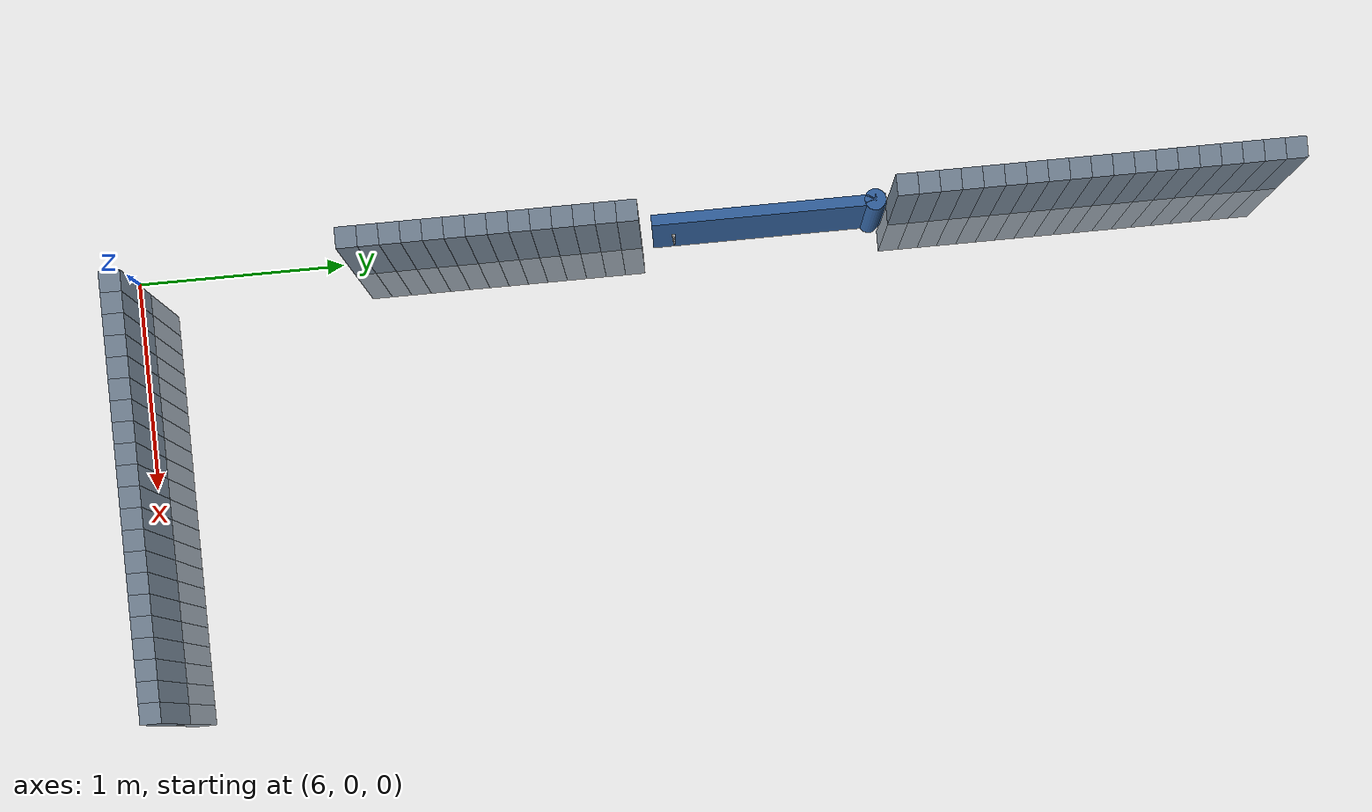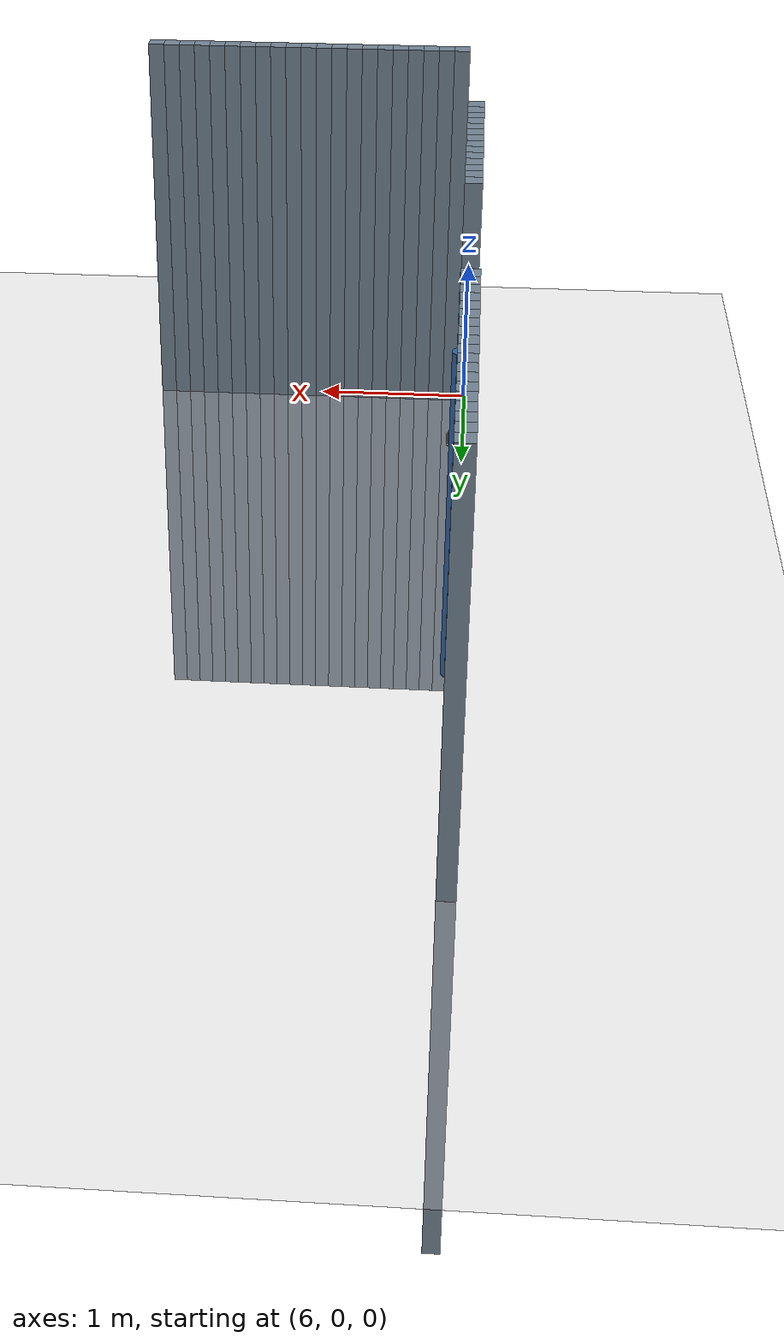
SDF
<sdf version="1.6">
 <world name="default">
  <model name="ground_plane">
   <static>1</static>
   <link name="link">
    <collision name="collision">
     <geometry><plane><normal>0 0 1</normal><size>100 100</size></plane></geometry>
     <surface><friction><ode><mu>100</mu><mu2>50</mu2></ode></friction></surface>
    </collision>
    <visual name="visual">
     <cast_shadows>0</cast_shadows>
     <geometry><plane><normal>0 0 1</normal><size>100 100</size></plane></geometry>
     <material>
      <script><uri>file://media/materials/scripts/gazebo.material</uri><name>Gazebo/Grey</name></script>
     </material>
    </visual>
   </link>
  </model>
  <model name="unit_cylinder_192">
   <static>1</static>
   <pose>6 1.1 0 0 -0 0</pose>
   <link name="link">
    <inertial>
     <mass>1</mass>
     <inertia><ixx>0.145833</ixx><ixy>0</ixy><ixz>0</ixz><iyy>0.145833</iyy><iyz>0</iyz><izz>0.125</izz></inertia>
    </inertial>
    <collision name="collision"><geometry><box><size>0.1 0.1 5</size></box></geometry></collision>
    <visual name="visual">
     <geometry><box><size>0.1 0.1 5</size></box></geometry>
     <material><ambient>0.466667 0.533333 0.6 1</ambient><diffuse>0.466667 0.533333 0.6 1</diffuse></material>
     <material>
      <script><name>Gazebo/Grey</name><uri>file://media/materials/scripts/gazebo.material</uri></script>
     </material>
    </visual>
   </link>
  </model>
  <model name="unit_cylinder_193">
   <static>1</static>
   <pose>6 1.2 0 0 -0 0</pose>
   <link name="link">
    <inertial>
     <mass>1</mass>
     <inertia><ixx>0.145833</ixx><ixy>0</ixy><ixz>0</ixz><iyy>0.145833</iyy><iyz>0</iyz><izz>0.125</izz></inertia>
    </inertial>
    <collision name="collision"><geometry><box><size>0.1 0.1 5</size></box></geometry></collision>
    <visual name="visual">
     <geometry><box><size>0.1 0.1 5</size></box></geometry>
     <material><ambient>0.466667 0.533333 0.6 1</ambient><diffuse>0.466667 0.533333 0.6 1</diffuse></material>
     <material>
      <script><name>Gazebo/Grey</name><uri>file://media/materials/scripts/gazebo.material</uri></script>
     </material>
    </visual>
   </link>
  </model>
  <model name="unit_cylinder_194">
   <static>1</static>
   <pose>6 1.3 0 0 -0 0</pose>
   <link name="link">
    <inertial>
     <mass>1</mass>
     <inertia><ixx>0.145833</ixx><ixy>0</ixy><ixz>0</ixz><iyy>0.145833</iyy><iyz>0</iyz><izz>0.125</izz></inertia>
    </inertial>
    <collision name="collision"><geometry><box><size>0.1 0.1 5</size></box></geometry></collision>
    <visual name="visual">
     <geometry><box><size>0.1 0.1 5</size></box></geometry>
     <material><ambient>0.466667 0.533333 0.6 1</ambient><diffuse>0.466667 0.533333 0.6 1</diffuse></material>
     <material>
      <script><name>Gazebo/Grey</name><uri>file://media/materials/scripts/gazebo.material</uri></script>
     </material>
    </visual>
   </link>
  </model>
  <model name="unit_cylinder_195">
   <static>1</static>
   <pose>6 1.4 0 0 -0 0</pose>
   <link name="link">
    <inertial>
     <mass>1</mass>
     <inertia><ixx>0.145833</ixx><ixy>0</ixy><ixz>0</ixz><iyy>0.145833</iyy><iyz>0</iyz><izz>0.125</izz></inertia>
    </inertial>
    <collision name="collision"><geometry><box><size>0.1 0.1 5</size></box></geometry></collision>
    <visual name="visual">
     <geometry><box><size>0.1 0.1 5</size></box></geometry>
     <material><ambient>0.466667 0.533333 0.6 1</ambient><diffuse>0.466667 0.533333 0.6 1</diffuse></material>
     <material>
      <script><name>Gazebo/Grey</name><uri>file://media/materials/scripts/gazebo.material</uri></script>
     </material>
    </visual>
   </link>
  </model>
  <model name="unit_cylinder_196">
   <static>1</static>
   <pose>6 1.5 0 0 -0 0</pose>
   <link name="link">
    <inertial>
     <mass>1</mass>
     <inertia><ixx>0.145833</ixx><ixy>0</ixy><ixz>0</ixz><iyy>0.145833</iyy><iyz>0</iyz><izz>0.125</izz></inertia>
    </inertial>
    <collision name="collision"><geometry><box><size>0.1 0.1 5</size></box></geometry></collision>
    <visual name="visual">
     <geometry><box><size>0.1 0.1 5</size></box></geometry>
     <material><ambient>0.466667 0.533333 0.6 1</ambient><diffuse>0.466667 0.533333 0.6 1</diffuse></material>
     <material>
      <script><name>Gazebo/Grey</name><uri>file://media/materials/scripts/gazebo.material</uri></script>
     </material>
    </visual>
   </link>
  </model>
  <model name="unit_cylinder_197">
   <static>1</static>
   <pose>6 1.6 0 0 -0 0</pose>
   <link name="link">
    <inertial>
     <mass>1</mass>
     <inertia><ixx>0.145833</ixx><ixy>0</ixy><ixz>0</ixz><iyy>0.145833</iyy><iyz>0</iyz><izz>0.125</izz></inertia>
    </inertial>
    <collision name="collision"><geometry><box><size>0.1 0.1 5</size></box></geometry></collision>
    <visual name="visual">
     <geometry><box><size>0.1 0.1 5</size></box></geometry>
     <material><ambient>0.466667 0.533333 0.6 1</ambient><diffuse>0.466667 0.533333 0.6 1</diffuse></material>
     <material>
      <script><name>Gazebo/Grey</name><uri>file://media/materials/scripts/gazebo.material</uri></script>
     </material>
    </visual>
   </link>
  </model>
  <model name="unit_cylinder_198">
   <static>1</static>
   <pose>6 1.7 0 0 -0 0</pose>
   <link name="link">
    <inertial>
     <mass>1</mass>
     <inertia><ixx>0.145833</ixx><ixy>0</ixy><ixz>0</ixz><iyy>0.145833</iyy><iyz>0</iyz><izz>0.125</izz></inertia>
    </inertial>
    <collision name="collision"><geometry><box><size>0.1 0.1 5</size></box></geometry></collision>
    <visual name="visual">
     <geometry><box><size>0.1 0.1 5</size></box></geometry>
     <material><ambient>0.466667 0.533333 0.6 1</ambient><diffuse>0.466667 0.533333 0.6 1</diffuse></material>
     <material>
      <script><name>Gazebo/Grey</name><uri>file://media/materials/scripts/gazebo.material</uri></script>
     </material>
    </visual>
   </link>
  </model>
  <model name="unit_cylinder_199">
   <static>1</static>
   <pose>6 1.8 0 0 -0 0</pose>
   <link name="link">
    <inertial>
     <mass>1</mass>
     <inertia><ixx>0.145833</ixx><ixy>0</ixy><ixz>0</ixz><iyy>0.145833</iyy><iyz>0</iyz><izz>0.125</izz></inertia>
    </inertial>
    <collision name="collision"><geometry><box><size>0.1 0.1 5</size></box></geometry></collision>
    <visual name="visual">
     <geometry><box><size>0.1 0.1 5</size></box></geometry>
     <material><ambient>0.466667 0.533333 0.6 1</ambient><diffuse>0.466667 0.533333 0.6 1</diffuse></material>
     <material>
      <script><name>Gazebo/Grey</name><uri>file://media/materials/scripts/gazebo.material</uri></script>
     </material>
    </visual>
   </link>
  </model>
  <model name="unit_cylinder_200">
   <static>1</static>
   <pose>6 1.9 0 0 -0 0</pose>
   <link name="link">
    <inertial>
     <mass>1</mass>
     <inertia><ixx>0.145833</ixx><ixy>0</ixy><ixz>0</ixz><iyy>0.145833</iyy><iyz>0</iyz><izz>0.125</izz></inertia>
    </inertial>
    <collision name="collision"><geometry><box><size>0.1 0.1 5</size></box></geometry></collision>
    <visual name="visual">
     <geometry><box><size>0.1 0.1 5</size></box></geometry>
     <material><ambient>0.466667 0.533333 0.6 1</ambient><diffuse>0.466667 0.533333 0.6 1</diffuse></material>
     <material>
      <script><name>Gazebo/Grey</name><uri>file://media/materials/scripts/gazebo.material</uri></script>
     </material>
    </visual>
   </link>
  </model>
  <model name="unit_cylinder_201">
   <static>1</static>
   <pose>6 2 0 0 -0 0</pose>
   <link name="link">
    <inertial>
     <mass>1</mass>
     <inertia><ixx>0.145833</ixx><ixy>0</ixy><ixz>0</ixz><iyy>0.145833</iyy><iyz>0</iyz><izz>0.125</izz></inertia>
    </inertial>
    <collision name="collision"><geometry><box><size>0.1 0.1 5</size></box></geometry></collision>
    <visual name="visual">
     <geometry><box><size>0.1 0.1 5</size></box></geometry>
     <material><ambient>0.466667 0.533333 0.6 1</ambient><diffuse>0.466667 0.533333 0.6 1</diffuse></material>
     <material>
      <script><name>Gazebo/Grey</name><uri>file://media/materials/scripts/gazebo.material</uri></script>
     </material>
    </visual>
   </link>
  </model>
  <model name="unit_cylinder_202">
   <static>1</static>
   <pose>6 2.1 0 0 -0 0</pose>
   <link name="link">
    <inertial>
     <mass>1</mass>
     <inertia><ixx>0.145833</ixx><ixy>0</ixy><ixz>0</ixz><iyy>0.145833</iyy><iyz>0</iyz><izz>0.125</izz></inertia>
    </inertial>
    <collision name="collision"><geometry><box><size>0.1 0.1 5</size></box></geometry></collision>
    <visual name="visual">
     <geometry><box><size>0.1 0.1 5</size></box></geometry>
     <material><ambient>0.466667 0.533333 0.6 1</ambient><diffuse>0.466667 0.533333 0.6 1</diffuse></material>
     <material>
      <script><name>Gazebo/Grey</name><uri>file://media/materials/scripts/gazebo.material</uri></script>
     </material>
    </visual>
   </link>
  </model>
  <model name="unit_cylinder_203">
   <static>1</static>
   <pose>6 2.2 0 0 -0 0</pose>
   <link name="link">
    <inertial>
     <mass>1</mass>
     <inertia><ixx>0.145833</ixx><ixy>0</ixy><ixz>0</ixz><iyy>0.145833</iyy><iyz>0</iyz><izz>0.125</izz></inertia>
    </inertial>
    <collision name="collision"><geometry><box><size>0.1 0.1 5</size></box></geometry></collision>
    <visual name="visual">
     <geometry><box><size>0.1 0.1 5</size></box></geometry>
     <material><ambient>0.466667 0.533333 0.6 1</ambient><diffuse>0.466667 0.533333 0.6 1</diffuse></material>
     <material>
      <script><name>Gazebo/Grey</name><uri>file://media/materials/scripts/gazebo.material</uri></script>
     </material>
    </visual>
   </link>
  </model>
  <model name="unit_cylinder_204">
   <static>1</static>
   <pose>6 2.3 0 0 -0 0</pose>
   <link name="link">
    <inertial>
     <mass>1</mass>
     <inertia><ixx>0.145833</ixx><ixy>0</ixy><ixz>0</ixz><iyy>0.145833</iyy><iyz>0</iyz><izz>0.125</izz></inertia>
    </inertial>
    <collision name="collision"><geometry><box><size>0.1 0.1 5</size></box></geometry></collision>
    <visual name="visual">
     <geometry><box><size>0.1 0.1 5</size></box></geometry>
     <material><ambient>0.466667 0.533333 0.6 1</ambient><diffuse>0.466667 0.533333 0.6 1</diffuse></material>
     <material>
      <script><name>Gazebo/Grey</name><uri>file://media/materials/scripts/gazebo.material</uri></script>
     </material>
    </visual>
   </link>
  </model>
  <model name="unit_cylinder_205">
   <static>1</static>
   <pose>6 2.4 0 0 -0 0</pose>
   <link name="link">
    <inertial>
     <mass>1</mass>
     <inertia><ixx>0.145833</ixx><ixy>0</ixy><ixz>0</ixz><iyy>0.145833</iyy><iyz>0</iyz><izz>0.125</izz></inertia>
    </inertial>
    <collision name="collision"><geometry><box><size>0.1 0.1 5</size></box></geometry></collision>
    <visual name="visual">
     <geometry><box><size>0.1 0.1 5</size></box></geometry>
     <material><ambient>0.466667 0.533333 0.6 1</ambient><diffuse>0.466667 0.533333 0.6 1</diffuse></material>
     <material>
      <script><name>Gazebo/Grey</name><uri>file://media/materials/scripts/gazebo.material</uri></script>
     </material>
    </visual>
   </link>
  </model>
  <model name="unit_cylinder_218">
   <static>1</static>
   <pose>6 3.7 0 0 -0 0</pose>
   <link name="link">
    <inertial>
     <mass>1</mass>
     <inertia><ixx>0.145833</ixx><ixy>0</ixy><ixz>0</ixz><iyy>0.145833</iyy><iyz>0</iyz><izz>0.125</izz></inertia>
    </inertial>
    <collision name="collision"><geometry><box><size>0.1 0.1 5</size></box></geometry></collision>
    <visual name="visual">
     <geometry><box><size>0.1 0.1 5</size></box></geometry>
     <material><ambient>0.466667 0.533333 0.6 1</ambient><diffuse>0.466667 0.533333 0.6 1</diffuse></material>
     <material>
      <script><name>Gazebo/Grey</name><uri>file://media/materials/scripts/gazebo.material</uri></script>
     </material>
    </visual>
   </link>
  </model>
  <model name="unit_cylinder_219">
   <static>1</static>
   <pose>6 3.8 0 0 -0 0</pose>
   <link name="link">
    <inertial>
     <mass>1</mass>
     <inertia><ixx>0.145833</ixx><ixy>0</ixy><ixz>0</ixz><iyy>0.145833</iyy><iyz>0</iyz><izz>0.125</izz></inertia>
    </inertial>
    <collision name="collision"><geometry><box><size>0.1 0.1 5</size></box></geometry></collision>
    <visual name="visual">
     <geometry><box><size>0.1 0.1 5</size></box></geometry>
     <material><ambient>0.466667 0.533333 0.6 1</ambient><diffuse>0.466667 0.533333 0.6 1</diffuse></material>
     <material>
      <script><name>Gazebo/Grey</name><uri>file://media/materials/scripts/gazebo.material</uri></script>
     </material>
    </visual>
   </link>
  </model>
  <model name="unit_cylinder_220">
   <static>1</static>
   <pose>6 3.9 0 0 -0 0</pose>
   <link name="link">
    <inertial>
     <mass>1</mass>
     <inertia><ixx>0.145833</ixx><ixy>0</ixy><ixz>0</ixz><iyy>0.145833</iyy><iyz>0</iyz><izz>0.125</izz></inertia>
    </inertial>
    <collision name="collision"><geometry><box><size>0.1 0.1 5</size></box></geometry></collision>
    <visual name="visual">
     <geometry><box><size>0.1 0.1 5</size></box></geometry>
     <material><ambient>0.466667 0.533333 0.6 1</ambient><diffuse>0.466667 0.533333 0.6 1</diffuse></material>
     <material>
      <script><name>Gazebo/Grey</name><uri>file://media/materials/scripts/gazebo.material</uri></script>
     </material>
    </visual>
   </link>
  </model>
  <model name="unit_cylinder_221">
   <static>1</static>
   <pose>6 4 0 0 -0 0</pose>
   <link name="link">
    <inertial>
     <mass>1</mass>
     <inertia><ixx>0.145833</ixx><ixy>0</ixy><ixz>0</ixz><iyy>0.145833</iyy><iyz>0</iyz><izz>0.125</izz></inertia>
    </inertial>
    <collision name="collision"><geometry><box><size>0.1 0.1 5</size></box></geometry></collision>
    <visual name="visual">
     <geometry><box><size>0.1 0.1 5</size></box></geometry>
     <material><ambient>0.466667 0.533333 0.6 1</ambient><diffuse>0.466667 0.533333 0.6 1</diffuse></material>
     <material>
      <script><name>Gazebo/Grey</name><uri>file://media/materials/scripts/gazebo.material</uri></script>
     </material>
    </visual>
   </link>
  </model>
  <model name="unit_cylinder_222">
   <static>1</static>
   <pose>6 4.1 0 0 -0 0</pose>
   <link name="link">
    <inertial>
     <mass>1</mass>
     <inertia><ixx>0.145833</ixx><ixy>0</ixy><ixz>0</ixz><iyy>0.145833</iyy><iyz>0</iyz><izz>0.125</izz></inertia>
    </inertial>
    <collision name="collision"><geometry><box><size>0.1 0.1 5</size></box></geometry></collision>
    <visual name="visual">
     <geometry><box><size>0.1 0.1 5</size></box></geometry>
     <material><ambient>0.466667 0.533333 0.6 1</ambient><diffuse>0.466667 0.533333 0.6 1</diffuse></material>
     <material>
      <script><name>Gazebo/Grey</name><uri>file://media/materials/scripts/gazebo.material</uri></script>
     </material>
    </visual>
   </link>
  </model>
  <model name="unit_cylinder_223">
   <static>1</static>
   <pose>6 4.2 0 0 -0 0</pose>
   <link name="link">
    <inertial>
     <mass>1</mass>
     <inertia><ixx>0.145833</ixx><ixy>0</ixy><ixz>0</ixz><iyy>0.145833</iyy><iyz>0</iyz><izz>0.125</izz></inertia>
    </inertial>
    <collision name="collision"><geometry><box><size>0.1 0.1 5</size></box></geometry></collision>
    <visual name="visual">
     <geometry><box><size>0.1 0.1 5</size></box></geometry>
     <material><ambient>0.466667 0.533333 0.6 1</ambient><diffuse>0.466667 0.533333 0.6 1</diffuse></material>
     <material>
      <script><name>Gazebo/Grey</name><uri>file://media/materials/scripts/gazebo.material</uri></script>
     </material>
    </visual>
   </link>
  </model>
  <model name="unit_cylinder_224">
   <static>1</static>
   <pose>6 4.3 0 0 -0 0</pose>
   <link name="link">
    <inertial>
     <mass>1</mass>
     <inertia><ixx>0.145833</ixx><ixy>0</ixy><ixz>0</ixz><iyy>0.145833</iyy><iyz>0</iyz><izz>0.125</izz></inertia>
    </inertial>
    <collision name="collision"><geometry><box><size>0.1 0.1 5</size></box></geometry></collision>
    <visual name="visual">
     <geometry><box><size>0.1 0.1 5</size></box></geometry>
     <material><ambient>0.466667 0.533333 0.6 1</ambient><diffuse>0.466667 0.533333 0.6 1</diffuse></material>
     <material>
      <script><name>Gazebo/Grey</name><uri>file://media/materials/scripts/gazebo.material</uri></script>
     </material>
    </visual>
   </link>
  </model>
  <model name="unit_cylinder_225">
   <static>1</static>
   <pose>6 4.4 0 0 -0 0</pose>
   <link name="link">
    <inertial>
     <mass>1</mass>
     <inertia><ixx>0.145833</ixx><ixy>0</ixy><ixz>0</ixz><iyy>0.145833</iyy><iyz>0</iyz><izz>0.125</izz></inertia>
    </inertial>
    <collision name="collision"><geometry><box><size>0.1 0.1 5</size></box></geometry></collision>
    <visual name="visual">
     <geometry><box><size>0.1 0.1 5</size></box></geometry>
     <material><ambient>0.466667 0.533333 0.6 1</ambient><diffuse>0.466667 0.533333 0.6 1</diffuse></material>
     <material>
      <script><name>Gazebo/Grey</name><uri>file://media/materials/scripts/gazebo.material</uri></script>
     </material>
    </visual>
   </link>
  </model>
  <model name="unit_cylinder_226">
   <static>1</static>
   <pose>6 4.5 0 0 -0 0</pose>
   <link name="link">
    <inertial>
     <mass>1</mass>
     <inertia><ixx>0.145833</ixx><ixy>0</ixy><ixz>0</ixz><iyy>0.145833</iyy><iyz>0</iyz><izz>0.125</izz></inertia>
    </inertial>
    <collision name="collision"><geometry><box><size>0.1 0.1 5</size></box></geometry></collision>
    <visual name="visual">
     <geometry><box><size>0.1 0.1 5</size></box></geometry>
     <material><ambient>0.466667 0.533333 0.6 1</ambient><diffuse>0.466667 0.533333 0.6 1</diffuse></material>
     <material>
      <script><name>Gazebo/Grey</name><uri>file://media/materials/scripts/gazebo.material</uri></script>
     </material>
    </visual>
   </link>
  </model>
  <model name="unit_cylinder_227">
   <static>1</static>
   <pose>6 4.6 0 0 -0 0</pose>
   <link name="link">
    <inertial>
     <mass>1</mass>
     <inertia><ixx>0.145833</ixx><ixy>0</ixy><ixz>0</ixz><iyy>0.145833</iyy><iyz>0</iyz><izz>0.125</izz></inertia>
    </inertial>
    <collision name="collision"><geometry><box><size>0.1 0.1 5</size></box></geometry></collision>
    <visual name="visual">
     <geometry><box><size>0.1 0.1 5</size></box></geometry>
     <material><ambient>0.466667 0.533333 0.6 1</ambient><diffuse>0.466667 0.533333 0.6 1</diffuse></material>
     <material>
      <script><name>Gazebo/Grey</name><uri>file://media/materials/scripts/gazebo.material</uri></script>
     </material>
    </visual>
   </link>
  </model>
  <model name="unit_cylinder_228">
   <static>1</static>
   <pose>6 4.7 0 0 -0 0</pose>
   <link name="link">
    <inertial>
     <mass>1</mass>
     <inertia><ixx>0.145833</ixx><ixy>0</ixy><ixz>0</ixz><iyy>0.145833</iyy><iyz>0</iyz><izz>0.125</izz></inertia>
    </inertial>
    <collision name="collision"><geometry><box><size>0.1 0.1 5</size></box></geometry></collision>
    <visual name="visual">
     <geometry><box><size>0.1 0.1 5</size></box></geometry>
     <material><ambient>0.466667 0.533333 0.6 1</ambient><diffuse>0.466667 0.533333 0.6 1</diffuse></material>
     <material>
      <script><name>Gazebo/Grey</name><uri>file://media/materials/scripts/gazebo.material</uri></script>
     </material>
    </visual>
   </link>
  </model>
  <model name="unit_cylinder_229">
   <static>1</static>
   <pose>6 4.8 0 0 -0 0</pose>
   <link name="link">
    <inertial>
     <mass>1</mass>
     <inertia><ixx>0.145833</ixx><ixy>0</ixy><ixz>0</ixz><iyy>0.145833</iyy><iyz>0</iyz><izz>0.125</izz></inertia>
    </inertial>
    <collision name="collision"><geometry><box><size>0.1 0.1 5</size></box></geometry></collision>
    <visual name="visual">
     <geometry><box><size>0.1 0.1 5</size></box></geometry>
     <material><ambient>0.466667 0.533333 0.6 1</ambient><diffuse>0.466667 0.533333 0.6 1</diffuse></material>
     <material>
      <script><name>Gazebo/Grey</name><uri>file://media/materials/scripts/gazebo.material</uri></script>
     </material>
    </visual>
   </link>
  </model>
  <model name="unit_cylinder_230">
   <static>1</static>
   <pose>6 4.9 0 0 -0 0</pose>
   <link name="link">
    <inertial>
     <mass>1</mass>
     <inertia><ixx>0.145833</ixx><ixy>0</ixy><ixz>0</ixz><iyy>0.145833</iyy><iyz>0</iyz><izz>0.125</izz></inertia>
    </inertial>
    <collision name="collision"><geometry><box><size>0.1 0.1 5</size></box></geometry></collision>
    <visual name="visual">
     <geometry><box><size>0.1 0.1 5</size></box></geometry>
     <material><ambient>0.466667 0.533333 0.6 1</ambient><diffuse>0.466667 0.533333 0.6 1</diffuse></material>
     <material>
      <script><name>Gazebo/Grey</name><uri>file://media/materials/scripts/gazebo.material</uri></script>
     </material>
    </visual>
   </link>
  </model>
  <model name="unit_cylinder_231">
   <static>1</static>
   <pose>6 5 0 0 -0 0</pose>
   <link name="link">
    <inertial>
     <mass>1</mass>
     <inertia><ixx>0.145833</ixx><ixy>0</ixy><ixz>0</ixz><iyy>0.145833</iyy><iyz>0</iyz><izz>0.125</izz></inertia>
    </inertial>
    <collision name="collision"><geometry><box><size>0.1 0.1 5</size></box></geometry></collision>
    <visual name="visual">
     <geometry><box><size>0.1 0.1 5</size></box></geometry>
     <material><ambient>0.466667 0.533333 0.6 1</ambient><diffuse>0.466667 0.533333 0.6 1</diffuse></material>
     <material>
      <script><name>Gazebo/Grey</name><uri>file://media/materials/scripts/gazebo.material</uri></script>
     </material>
    </visual>
   </link>
  </model>
  <model name="unit_cylinder_232">
   <static>1</static>
   <pose>6 5.1 0 0 -0 0</pose>
   <link name="link">
    <inertial>
     <mass>1</mass>
     <inertia><ixx>0.145833</ixx><ixy>0</ixy><ixz>0</ixz><iyy>0.145833</iyy><iyz>0</iyz><izz>0.125</izz></inertia>
    </inertial>
    <collision name="collision"><geometry><box><size>0.1 0.1 5</size></box></geometry></collision>
    <visual name="visual">
     <geometry><box><size>0.1 0.1 5</size></box></geometry>
     <material><ambient>0.466667 0.533333 0.6 1</ambient><diffuse>0.466667 0.533333 0.6 1</diffuse></material>
     <material>
      <script><name>Gazebo/Grey</name><uri>file://media/materials/scripts/gazebo.material</uri></script>
     </material>
    </visual>
   </link>
  </model>
  <model name="unit_cylinder_233">
   <static>1</static>
   <pose>6 5.2 0 0 -0 0</pose>
   <link name="link">
    <inertial>
     <mass>1</mass>
     <inertia><ixx>0.145833</ixx><ixy>0</ixy><ixz>0</ixz><iyy>0.145833</iyy><iyz>0</iyz><izz>0.125</izz></inertia>
    </inertial>
    <collision name="collision"><geometry><box><size>0.1 0.1 5</size></box></geometry></collision>
    <visual name="visual">
     <geometry><box><size>0.1 0.1 5</size></box></geometry>
     <material><ambient>0.466667 0.533333 0.6 1</ambient><diffuse>0.466667 0.533333 0.6 1</diffuse></material>
     <material>
      <script><name>Gazebo/Grey</name><uri>file://media/materials/scripts/gazebo.material</uri></script>
     </material>
    </visual>
   </link>
  </model>
  <model name="unit_cylinder_234">
   <static>1</static>
   <pose>6 5.3 0 0 -0 0</pose>
   <link name="link">
    <inertial>
     <mass>1</mass>
     <inertia><ixx>0.145833</ixx><ixy>0</ixy><ixz>0</ixz><iyy>0.145833</iyy><iyz>0</iyz><izz>0.125</izz></inertia>
    </inertial>
    <collision name="collision"><geometry><box><size>0.1 0.1 5</size></box></geometry></collision>
    <visual name="visual">
     <geometry><box><size>0.1 0.1 5</size></box></geometry>
     <material><ambient>0.466667 0.533333 0.6 1</ambient><diffuse>0.466667 0.533333 0.6 1</diffuse></material>
     <material>
      <script><name>Gazebo/Grey</name><uri>file://media/materials/scripts/gazebo.material</uri></script>
     </material>
    </visual>
   </link>
  </model>
  <model name="unit_cylinder_235">
   <static>1</static>
   <pose>6 5.4 0 0 -0 0</pose>
   <link name="link">
    <inertial>
     <mass>1</mass>
     <inertia><ixx>0.145833</ixx><ixy>0</ixy><ixz>0</ixz><iyy>0.145833</iyy><iyz>0</iyz><izz>0.125</izz></inertia>
    </inertial>
    <collision name="collision"><geometry><box><size>0.1 0.1 5</size></box></geometry></collision>
    <visual name="visual">
     <geometry><box><size>0.1 0.1 5</size></box></geometry>
     <material><ambient>0.466667 0.533333 0.6 1</ambient><diffuse>0.466667 0.533333 0.6 1</diffuse></material>
     <material>
      <script><name>Gazebo/Grey</name><uri>file://media/materials/scripts/gazebo.material</uri></script>
     </material>
    </visual>
   </link>
  </model>
  <model name="unit_cylinder_236">
   <static>1</static>
   <pose>6 5.5 0 0 -0 0</pose>
   <link name="link">
    <inertial>
     <mass>1</mass>
     <inertia><ixx>0.145833</ixx><ixy>0</ixy><ixz>0</ixz><iyy>0.145833</iyy><iyz>0</iyz><izz>0.125</izz></inertia>
    </inertial>
    <collision name="collision"><geometry><box><size>0.1 0.1 5</size></box></geometry></collision>
    <visual name="visual">
     <geometry><box><size>0.1 0.1 5</size></box></geometry>
     <material><ambient>0.466667 0.533333 0.6 1</ambient><diffuse>0.466667 0.533333 0.6 1</diffuse></material>
     <material>
      <script><name>Gazebo/Grey</name><uri>file://media/materials/scripts/gazebo.material</uri></script>
     </material>
    </visual>
   </link>
  </model>
  <model name="unit_cylinder_362">
   <static>1</static>
   <pose>6.1 0 0 0 -0 0</pose>
   <link name="link">
    <inertial>
     <mass>1</mass>
     <inertia><ixx>0.145833</ixx><ixy>0</ixy><ixz>0</ixz><iyy>0.145833</iyy><iyz>0</iyz><izz>0.125</izz></inertia>
    </inertial>
    <collision name="collision"><geometry><box><size>0.1 0.1 5</size></box></geometry></collision>
    <visual name="visual">
     <geometry><box><size>0.1 0.1 5</size></box></geometry>
     <material><ambient>0.466667 0.533333 0.6 1</ambient><diffuse>0.466667 0.533333 0.6 1</diffuse></material>
     <material>
      <script><name>Gazebo/Grey</name><uri>file://media/materials/scripts/gazebo.material</uri></script>
     </material>
    </visual>
   </link>
  </model>
  <model name="unit_cylinder_366">
   <static>1</static>
   <pose>6.2 0 0 0 -0 0</pose>
   <link name="link">
    <inertial>
     <mass>1</mass>
     <inertia><ixx>0.145833</ixx><ixy>0</ixy><ixz>0</ixz><iyy>0.145833</iyy><iyz>0</iyz><izz>0.125</izz></inertia>
    </inertial>
    <collision name="collision"><geometry><box><size>0.1 0.1 5</size></box></geometry></collision>
    <visual name="visual">
     <geometry><box><size>0.1 0.1 5</size></box></geometry>
     <material><ambient>0.466667 0.533333 0.6 1</ambient><diffuse>0.466667 0.533333 0.6 1</diffuse></material>
     <material>
      <script><name>Gazebo/Grey</name><uri>file://media/materials/scripts/gazebo.material</uri></script>
     </material>
    </visual>
   </link>
  </model>
  <model name="unit_cylinder_370">
   <static>1</static>
   <pose>6.3 0 0 0 -0 0</pose>
   <link name="link">
    <inertial>
     <mass>1</mass>
     <inertia><ixx>0.145833</ixx><ixy>0</ixy><ixz>0</ixz><iyy>0.145833</iyy><iyz>0</iyz><izz>0.125</izz></inertia>
    </inertial>
    <collision name="collision"><geometry><box><size>0.1 0.1 5</size></box></geometry></collision>
    <visual name="visual">
     <geometry><box><size>0.1 0.1 5</size></box></geometry>
     <material><ambient>0.466667 0.533333 0.6 1</ambient><diffuse>0.466667 0.533333 0.6 1</diffuse></material>
     <material>
      <script><name>Gazebo/Grey</name><uri>file://media/materials/scripts/gazebo.material</uri></script>
     </material>
    </visual>
   </link>
  </model>
  <model name="unit_cylinder_374">
   <static>1</static>
   <pose>6.4 0 0 0 -0 0</pose>
   <link name="link">
    <inertial>
     <mass>1</mass>
     <inertia><ixx>0.145833</ixx><ixy>0</ixy><ixz>0</ixz><iyy>0.145833</iyy><iyz>0</iyz><izz>0.125</izz></inertia>
    </inertial>
    <collision name="collision"><geometry><box><size>0.1 0.1 5</size></box></geometry></collision>
    <visual name="visual">
     <geometry><box><size>0.1 0.1 5</size></box></geometry>
     <material><ambient>0.466667 0.533333 0.6 1</ambient><diffuse>0.466667 0.533333 0.6 1</diffuse></material>
     <material>
      <script><name>Gazebo/Grey</name><uri>file://media/materials/scripts/gazebo.material</uri></script>
     </material>
    </visual>
   </link>
  </model>
  <model name="unit_cylinder_378">
   <static>1</static>
   <pose>6.5 0 0 0 -0 0</pose>
   <link name="link">
    <inertial>
     <mass>1</mass>
     <inertia><ixx>0.145833</ixx><ixy>0</ixy><ixz>0</ixz><iyy>0.145833</iyy><iyz>0</iyz><izz>0.125</izz></inertia>
    </inertial>
    <collision name="collision"><geometry><box><size>0.1 0.1 5</size></box></geometry></collision>
    <visual name="visual">
     <geometry><box><size>0.1 0.1 5</size></box></geometry>
     <material><ambient>0.466667 0.533333 0.6 1</ambient><diffuse>0.466667 0.533333 0.6 1</diffuse></material>
     <material>
      <script><name>Gazebo/Grey</name><uri>file://media/materials/scripts/gazebo.material</uri></script>
     </material>
    </visual>
   </link>
  </model>
  <model name="unit_cylinder_382">
   <static>1</static>
   <pose>6.6 0 0 0 -0 0</pose>
   <link name="link">
    <inertial>
     <mass>1</mass>
     <inertia><ixx>0.145833</ixx><ixy>0</ixy><ixz>0</ixz><iyy>0.145833</iyy><iyz>0</iyz><izz>0.125</izz></inertia>
    </inertial>
    <collision name="collision"><geometry><box><size>0.1 0.1 5</size></box></geometry></collision>
    <visual name="visual">
     <geometry><box><size>0.1 0.1 5</size></box></geometry>
     <material><ambient>0.466667 0.533333 0.6 1</ambient><diffuse>0.466667 0.533333 0.6 1</diffuse></material>
     <material>
      <script><name>Gazebo/Grey</name><uri>file://media/materials/scripts/gazebo.material</uri></script>
     </material>
    </visual>
   </link>
  </model>
  <model name="unit_cylinder_386">
   <static>1</static>
   <pose>6.7 0 0 0 -0 0</pose>
   <link name="link">
    <inertial>
     <mass>1</mass>
     <inertia><ixx>0.145833</ixx><ixy>0</ixy><ixz>0</ixz><iyy>0.145833</iyy><iyz>0</iyz><izz>0.125</izz></inertia>
    </inertial>
    <collision name="collision"><geometry><box><size>0.1 0.1 5</size></box></geometry></collision>
    <visual name="visual">
     <geometry><box><size>0.1 0.1 5</size></box></geometry>
     <material><ambient>0.466667 0.533333 0.6 1</ambient><diffuse>0.466667 0.533333 0.6 1</diffuse></material>
     <material>
      <script><name>Gazebo/Grey</name><uri>file://media/materials/scripts/gazebo.material</uri></script>
     </material>
    </visual>
   </link>
  </model>
  <model name="unit_cylinder_390">
   <static>1</static>
   <pose>6.8 0 0 0 -0 0</pose>
   <link name="link">
    <inertial>
     <mass>1</mass>
     <inertia><ixx>0.145833</ixx><ixy>0</ixy><ixz>0</ixz><iyy>0.145833</iyy><iyz>0</iyz><izz>0.125</izz></inertia>
    </inertial>
    <collision name="collision"><geometry><box><size>0.1 0.1 5</size></box></geometry></collision>
    <visual name="visual">
     <geometry><box><size>0.1 0.1 5</size></box></geometry>
     <material><ambient>0.466667 0.533333 0.6 1</ambient><diffuse>0.466667 0.533333 0.6 1</diffuse></material>
     <material>
      <script><name>Gazebo/Grey</name><uri>file://media/materials/scripts/gazebo.material</uri></script>
     </material>
    </visual>
   </link>
  </model>
  <model name="unit_cylinder_394">
   <static>1</static>
   <pose>6.9 0 0 0 -0 0</pose>
   <link name="link">
    <inertial>
     <mass>1</mass>
     <inertia><ixx>0.145833</ixx><ixy>0</ixy><ixz>0</ixz><iyy>0.145833</iyy><iyz>0</iyz><izz>0.125</izz></inertia>
    </inertial>
    <collision name="collision"><geometry><box><size>0.1 0.1 5</size></box></geometry></collision>
    <visual name="visual">
     <geometry><box><size>0.1 0.1 5</size></box></geometry>
     <material><ambient>0.466667 0.533333 0.6 1</ambient><diffuse>0.466667 0.533333 0.6 1</diffuse></material>
     <material>
      <script><name>Gazebo/Grey</name><uri>file://media/materials/scripts/gazebo.material</uri></script>
     </material>
    </visual>
   </link>
  </model>
  <model name="unit_cylinder_398">
   <static>1</static>
   <pose>7 0 0 0 -0 0</pose>
   <link name="link">
    <inertial>
     <mass>1</mass>
     <inertia><ixx>0.145833</ixx><ixy>0</ixy><ixz>0</ixz><iyy>0.145833</iyy><iyz>0</iyz><izz>0.125</izz></inertia>
    </inertial>
    <collision name="collision"><geometry><box><size>0.1 0.1 5</size></box></geometry></collision>
    <visual name="visual">
     <geometry><box><size>0.1 0.1 5</size></box></geometry>
     <material><ambient>0.466667 0.533333 0.6 1</ambient><diffuse>0.466667 0.533333 0.6 1</diffuse></material>
     <material>
      <script><name>Gazebo/Grey</name><uri>file://media/materials/scripts/gazebo.material</uri></script>
     </material>
    </visual>
   </link>
  </model>
  <model name="unit_cylinder_402">
   <static>1</static>
   <pose>7.1 0 0 0 -0 0</pose>
   <link name="link">
    <inertial>
     <mass>1</mass>
     <inertia><ixx>0.145833</ixx><ixy>0</ixy><ixz>0</ixz><iyy>0.145833</iyy><iyz>0</iyz><izz>0.125</izz></inertia>
    </inertial>
    <collision name="collision"><geometry><box><size>0.1 0.1 5</size></box></geometry></collision>
    <visual name="visual">
     <geometry><box><size>0.1 0.1 5</size></box></geometry>
     <material><ambient>0.466667 0.533333 0.6 1</ambient><diffuse>0.466667 0.533333 0.6 1</diffuse></material>
     <material>
      <script><name>Gazebo/Grey</name><uri>file://media/materials/scripts/gazebo.material</uri></script>
     </material>
    </visual>
   </link>
  </model>
  <model name="unit_cylinder_406">
   <static>1</static>
   <pose>7.2 0 0 0 -0 0</pose>
   <link name="link">
    <inertial>
     <mass>1</mass>
     <inertia><ixx>0.145833</ixx><ixy>0</ixy><ixz>0</ixz><iyy>0.145833</iyy><iyz>0</iyz><izz>0.125</izz></inertia>
    </inertial>
    <collision name="collision"><geometry><box><size>0.1 0.1 5</size></box></geometry></collision>
    <visual name="visual">
     <geometry><box><size>0.1 0.1 5</size></box></geometry>
     <material><ambient>0.466667 0.533333 0.6 1</ambient><diffuse>0.466667 0.533333 0.6 1</diffuse></material>
     <material>
      <script><name>Gazebo/Grey</name><uri>file://media/materials/scripts/gazebo.material</uri></script>
     </material>
    </visual>
   </link>
  </model>
  <model name="unit_cylinder_410">
   <static>1</static>
   <pose>7.3 0 0 0 -0 0</pose>
   <link name="link">
    <inertial>
     <mass>1</mass>
     <inertia><ixx>0.145833</ixx><ixy>0</ixy><ixz>0</ixz><iyy>0.145833</iyy><iyz>0</iyz><izz>0.125</izz></inertia>
    </inertial>
    <collision name="collision"><geometry><box><size>0.1 0.1 5</size></box></geometry></collision>
    <visual name="visual">
     <geometry><box><size>0.1 0.1 5</size></box></geometry>
     <material><ambient>0.466667 0.533333 0.6 1</ambient><diffuse>0.466667 0.533333 0.6 1</diffuse></material>
     <material>
      <script><name>Gazebo/Grey</name><uri>file://media/materials/scripts/gazebo.material</uri></script>
     </material>
    </visual>
   </link>
  </model>
  <model name="unit_cylinder_414">
   <static>1</static>
   <pose>7.4 0 0 0 -0 0</pose>
   <link name="link">
    <inertial>
     <mass>1</mass>
     <inertia><ixx>0.145833</ixx><ixy>0</ixy><ixz>0</ixz><iyy>0.145833</iyy><iyz>0</iyz><izz>0.125</izz></inertia>
    </inertial>
    <collision name="collision"><geometry><box><size>0.1 0.1 5</size></box></geometry></collision>
    <visual name="visual">
     <geometry><box><size>0.1 0.1 5</size></box></geometry>
     <material><ambient>0.466667 0.533333 0.6 1</ambient><diffuse>0.466667 0.533333 0.6 1</diffuse></material>
     <material>
      <script><name>Gazebo/Grey</name><uri>file://media/materials/scripts/gazebo.material</uri></script>
     </material>
    </visual>
   </link>
  </model>
  <model name="unit_cylinder_418">
   <static>1</static>
   <pose>7.5 0 0 0 -0 0</pose>
   <link name="link">
    <inertial>
     <mass>1</mass>
     <inertia><ixx>0.145833</ixx><ixy>0</ixy><ixz>0</ixz><iyy>0.145833</iyy><iyz>0</iyz><izz>0.125</izz></inertia>
    </inertial>
    <collision name="collision"><geometry><box><size>0.1 0.1 5</size></box></geometry></collision>
    <visual name="visual">
     <geometry><box><size>0.1 0.1 5</size></box></geometry>
     <material><ambient>0.466667 0.533333 0.6 1</ambient><diffuse>0.466667 0.533333 0.6 1</diffuse></material>
     <material>
      <script><name>Gazebo/Grey</name><uri>file://media/materials/scripts/gazebo.material</uri></script>
     </material>
    </visual>
   </link>
  </model>
  <model name="unit_cylinder_422">
   <static>1</static>
   <pose>7.6 0 0 0 -0 0</pose>
   <link name="link">
    <inertial>
     <mass>1</mass>
     <inertia><ixx>0.145833</ixx><ixy>0</ixy><ixz>0</ixz><iyy>0.145833</iyy><iyz>0</iyz><izz>0.125</izz></inertia>
    </inertial>
    <collision name="collision"><geometry><box><size>0.1 0.1 5</size></box></geometry></collision>
    <visual name="visual">
     <geometry><box><size>0.1 0.1 5</size></box></geometry>
     <material><ambient>0.466667 0.533333 0.6 1</ambient><diffuse>0.466667 0.533333 0.6 1</diffuse></material>
     <material>
      <script><name>Gazebo/Grey</name><uri>file://media/materials/scripts/gazebo.material</uri></script>
     </material>
    </visual>
   </link>
  </model>
  <model name="unit_cylinder_426">
   <static>1</static>
   <pose>7.7 0 0 0 -0 0</pose>
   <link name="link">
    <inertial>
     <mass>1</mass>
     <inertia><ixx>0.145833</ixx><ixy>0</ixy><ixz>0</ixz><iyy>0.145833</iyy><iyz>0</iyz><izz>0.125</izz></inertia>
    </inertial>
    <collision name="collision"><geometry><box><size>0.1 0.1 5</size></box></geometry></collision>
    <visual name="visual">
     <geometry><box><size>0.1 0.1 5</size></box></geometry>
     <material><ambient>0.466667 0.533333 0.6 1</ambient><diffuse>0.466667 0.533333 0.6 1</diffuse></material>
     <material>
      <script><name>Gazebo/Grey</name><uri>file://media/materials/scripts/gazebo.material</uri></script>
     </material>
    </visual>
   </link>
  </model>
  <model name="unit_cylinder_430">
   <static>1</static>
   <pose>7.8 0 0 0 -0 0</pose>
   <link name="link">
    <inertial>
     <mass>1</mass>
     <inertia><ixx>0.145833</ixx><ixy>0</ixy><ixz>0</ixz><iyy>0.145833</iyy><iyz>0</iyz><izz>0.125</izz></inertia>
    </inertial>
    <collision name="collision"><geometry><box><size>0.1 0.1 5</size></box></geometry></collision>
    <visual name="visual">
     <geometry><box><size>0.1 0.1 5</size></box></geometry>
     <material><ambient>0.466667 0.533333 0.6 1</ambient><diffuse>0.466667 0.533333 0.6 1</diffuse></material>
     <material>
      <script><name>Gazebo/Grey</name><uri>file://media/materials/scripts/gazebo.material</uri></script>
     </material>
    </visual>
   </link>
  </model>
  <model name="unit_cylinder_434">
   <static>1</static>
   <pose>7.9 0 0 0 -0 0</pose>
   <link name="link">
    <inertial>
     <mass>1</mass>
     <inertia><ixx>0.145833</ixx><ixy>0</ixy><ixz>0</ixz><iyy>0.145833</iyy><iyz>0</iyz><izz>0.125</izz></inertia>
    </inertial>
    <collision name="collision"><geometry><box><size>0.1 0.1 5</size></box></geometry></collision>
    <visual name="visual">
     <geometry><box><size>0.1 0.1 5</size></box></geometry>
     <material><ambient>0.466667 0.533333 0.6 1</ambient><diffuse>0.466667 0.533333 0.6 1</diffuse></material>
     <material>
      <script><name>Gazebo/Grey</name><uri>file://media/materials/scripts/gazebo.material</uri></script>
     </material>
    </visual>
   </link>
  </model>
  <model name="unit_cylinder_438">
   <static>1</static>
   <pose>8 0 0 0 -0 0</pose>
   <link name="link">
    <inertial>
     <mass>1</mass>
     <inertia><ixx>0.145833</ixx><ixy>0</ixy><ixz>0</ixz><iyy>0.145833</iyy><iyz>0</iyz><izz>0.125</izz></inertia>
    </inertial>
    <collision name="collision"><geometry><box><size>0.1 0.1 5</size></box></geometry></collision>
    <visual name="visual">
     <geometry><box><size>0.1 0.1 5</size></box></geometry>
     <material><ambient>0.466667 0.533333 0.6 1</ambient><diffuse>0.466667 0.533333 0.6 1</diffuse></material>
     <material>
      <script><name>Gazebo/Grey</name><uri>file://media/materials/scripts/gazebo.material</uri></script>
     </material>
    </visual>
   </link>
  </model>
  <model name="unit_cylinder_442">
   <static>1</static>
   <pose>8.1 0 0 0 -0 0</pose>
   <link name="link">
    <inertial>
     <mass>1</mass>
     <inertia><ixx>0.145833</ixx><ixy>0</ixy><ixz>0</ixz><iyy>0.145833</iyy><iyz>0</iyz><izz>0.125</izz></inertia>
    </inertial>
    <collision name="collision"><geometry><box><size>0.1 0.1 5</size></box></geometry></collision>
    <visual name="visual">
     <geometry><box><size>0.1 0.1 5</size></box></geometry>
     <material><ambient>0.466667 0.533333 0.6 1</ambient><diffuse>0.466667 0.533333 0.6 1</diffuse></material>
     <material>
      <script><name>Gazebo/Grey</name><uri>file://media/materials/scripts/gazebo.material</uri></script>
     </material>
    </visual>
   </link>
  </model>
  <model name="hinge_door_3">
   <link name="link_0">
    <inertial>
     <mass>0.11</mass>
     <inertia>
      <ixx>0.0366896</ixx>
      <ixy>0</ixy>
      <ixz>0</ixz>
      <iyy>0.0477583</iyy>
      <iyz>0</iyz>
      <izz>0.0111146</izz>
     </inertia>
    </inertial>
    <pose>0.25 0 1 0 -0 0</pose>
    <visual name="visual">
     <geometry><box><size>1.1 0.05 2</size></box></geometry>
     <material>
      <lighting>1</lighting>
      <script><uri>file://media/materials/scripts/gazebo.material</uri><name>Gazebo/Grey</name></script>
      <shader type="pixel"><normal_map>__default__</normal_map></shader>
      <ambient>0.204 0.396 0.643 1</ambient>
      <diffuse>0.7 0.7 0.7 1</diffuse>
      <specular>0.01 0.01 0.01 1</specular>
      <emissive>0 0 0 1</emissive>
     </material>
    </visual>
    <collision name="collision">
     <geometry><box><size>1.1 0.05 2</size></box></geometry>
     <surface>
      <friction>
       <ode><mu>1</mu><mu2>1</mu2><fdir1>0 0 0</fdir1><slip1>0</slip1><slip2>0</slip2></ode>
       <torsional>
        <coefficient>1</coefficient>
        <patch_radius>0</patch_radius>
        <surface_radius>0</surface_radius>
        <use_patch_radius>1</use_patch_radius>
        <ode><slip>0</slip></ode>
       </torsional>
      </friction>
      <bounce><restitution_coefficient>0</restitution_coefficient><threshold>1e+06</threshold></bounce>
      <contact>
       <collide_without_contact>0</collide_without_contact>
       <collide_without_contact_bitmask>1</collide_without_contact_bitmask>
       <collide_bitmask>1</collide_bitmask>
       <ode>
        <soft_cfm>0</soft_cfm>
        <soft_erp>0.2</soft_erp>
        <kp>1e+13</kp>
        <kd>1</kd>
        <max_vel>0.01</max_vel>
        <min_depth>0</min_depth>
       </ode>
       <bullet>
        <split_impulse>1</split_impulse>
        <split_impulse_penetration_threshold>-0.01</split_impulse_penetration_threshold>
        <soft_cfm>0</soft_cfm>
        <soft_erp>0.2</soft_erp>
        <kp>1e+13</kp>
        <kd>1</kd>
       </bullet>
      </contact>
     </surface>
    </collision>
   </link>
   <link name="link_1">
    <inertial>
     <mass>10.9956</mass>
     <inertia>
      <ixx>3.67206</ixx>
      <ixy>0</ixy>
      <ixz>0</ixz>
      <iyy>3.67206</iyy>
      <iyz>0</iyz>
      <izz>0.0137445</izz>
     </inertia>
    </inertial>
    <pose>-0.25 0 1 0 -0 0</pose>
    <visual name="visual">
     <geometry><cylinder><radius>0.05</radius><length>2</length></cylinder></geometry>
     <material>
      <lighting>1</lighting>
      <script><uri>file://media/materials/scripts/gazebo.material</uri><name>Gazebo/Grey</name></script>
      <shader type="pixel"><normal_map>__default__</normal_map></shader>
      <ambient>0.204 0.396 0.643 1</ambient>
      <diffuse>0.7 0.7 0.7 1</diffuse>
      <specular>0.01 0.01 0.01 1</specular>
      <emissive>0 0 0 1</emissive>
     </material>
    </visual>
    <collision name="collision">
     <geometry><cylinder><radius>0.05</radius><length>2</length></cylinder></geometry>
     <surface>
      <friction>
       <ode><mu>1</mu><mu2>1</mu2><fdir1>0 0 0</fdir1><slip1>0</slip1><slip2>0</slip2></ode>
       <torsional>
        <coefficient>1</coefficient>
        <patch_radius>0</patch_radius>
        <surface_radius>0</surface_radius>
        <use_patch_radius>1</use_patch_radius>
        <ode><slip>0</slip></ode>
       </torsional>
      </friction>
      <bounce><restitution_coefficient>0</restitution_coefficient><threshold>1e+06</threshold></bounce>
      <contact>
       <collide_without_contact>0</collide_without_contact>
       <collide_without_contact_bitmask>1</collide_without_contact_bitmask>
       <collide_bitmask>1</collide_bitmask>
       <ode>
        <soft_cfm>0</soft_cfm>
        <soft_erp>0.2</soft_erp>
        <kp>1e+13</kp>
        <kd>1</kd>
        <max_vel>0.01</max_vel>
        <min_depth>0</min_depth>
       </ode>
       <bullet>
        <split_impulse>1</split_impulse>
        <split_impulse_penetration_threshold>-0.01</split_impulse_penetration_threshold>
        <soft_cfm>0</soft_cfm>
        <soft_erp>0.2</soft_erp>
        <kp>1e+13</kp>
        <kd>1</kd>
       </bullet>
      </contact>
     </surface>
    </collision>
   </link>
   <link name="knob">
    <inertial>
     <mass>0.1</mass>
     <pose>-2.9e-05 6.3e-05 0.027217 0 -0 0</pose>
     <inertia><ixx>1</ixx><ixy>0</ixy><ixz>0</ixz><iyy>1</iyy><iyz>0</iyz><izz>1</izz></inertia>
    </inertial>
    <visual name="visual">
     <pose>0.7 0.025 1 1.57 0 3.14</pose>
     <geometry><mesh><uri>model://door/door_puller_knob.dae</uri></mesh></geometry>
    </visual>
    <collision name="collision">
     <pose>0.7 0.025 1 1.57 0 3.14</pose>
     <geometry><box><size>-0.02 -0.1 -0.09</size></box></geometry>
    </collision>
   </link>
   <joint name="hinge" type="revolute">
    <parent>link_1</parent>
    <child>link_0</child>
    <pose>-0.5 0 0 0 -0 0</pose>
    <axis>
     <xyz>0 0 1</xyz>
     <use_parent_model_frame>0</use_parent_model_frame>
     <limit>
      <lower>-1.79769e+308</lower>
      <upper>1.79769e+308</upper>
      <effort>-1</effort>
      <velocity>-1</velocity>
     </limit>
     <dynamics>
      <spring_reference>0</spring_reference>
      <spring_stiffness>0</spring_stiffness>
      <damping>0</damping>
      <friction>0</friction>
     </dynamics>
    </axis>
    <physics>
     <ode><limit><cfm>0</cfm><erp>0.2</erp></limit><suspension><cfm>0</cfm><erp>0.2</erp></suspension></ode>
    </physics>
   </joint>
   <joint name="knob_link" type="fixed">
    <parent>link_0</parent>
    <child>knob</child>
    <axis>
     <xyz>0 0 1</xyz>
     <dynamics><spring_reference>0</spring_reference><spring_stiffness>0</spring_stiffness></dynamics>
     <use_parent_model_frame>0</use_parent_model_frame>
     <limit><lower>-1e+16</lower><upper>1e+16</upper></limit>
    </axis>
   </joint>
   <joint name="floor_link" type="fixed">
    <child>link_1</child>
    <parent>world</parent>
    <axis>
     <xyz>0 0 1</xyz>
     <dynamics><spring_reference>0</spring_reference><spring_stiffness>0</spring_stiffness></dynamics>
     <use_parent_model_frame>0</use_parent_model_frame>
     <limit><lower>-1e+16</lower><upper>1e+16</upper></limit>
    </axis>
   </joint>
   <pose>6.02883 3.30742 0 0 0 -1.57</pose>
  </model>
 </world>
</sdf>
